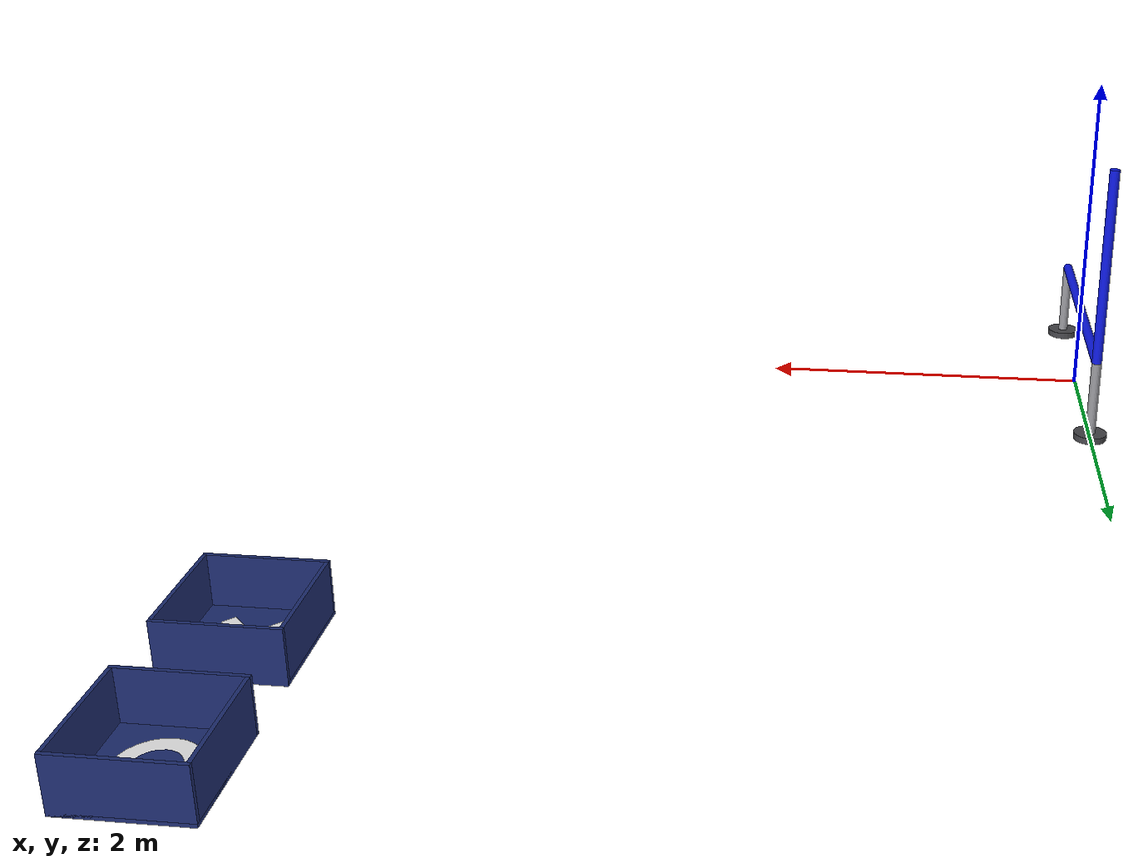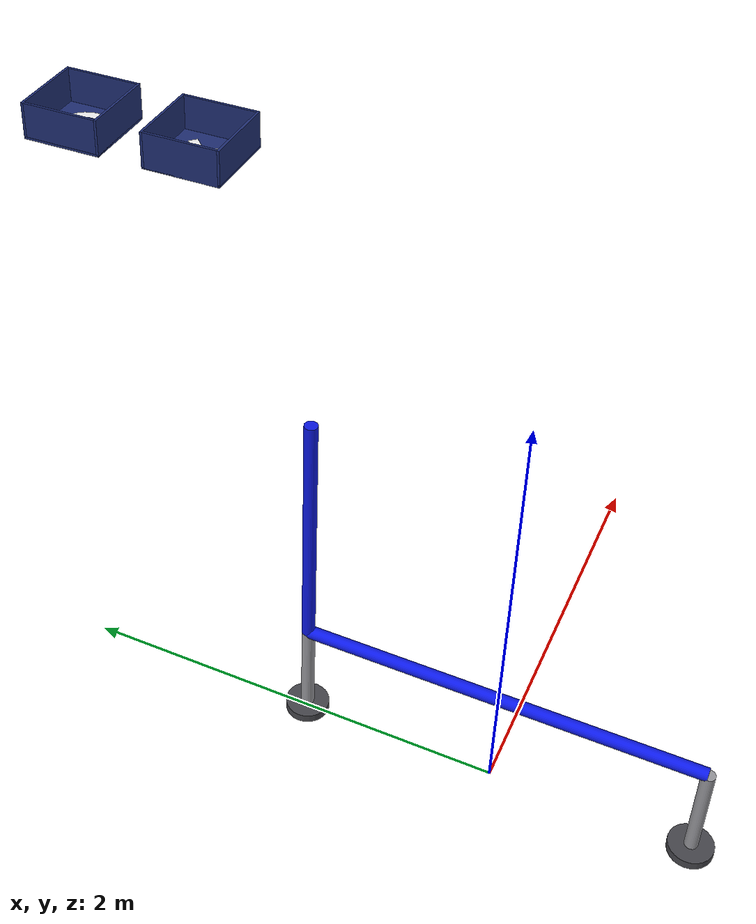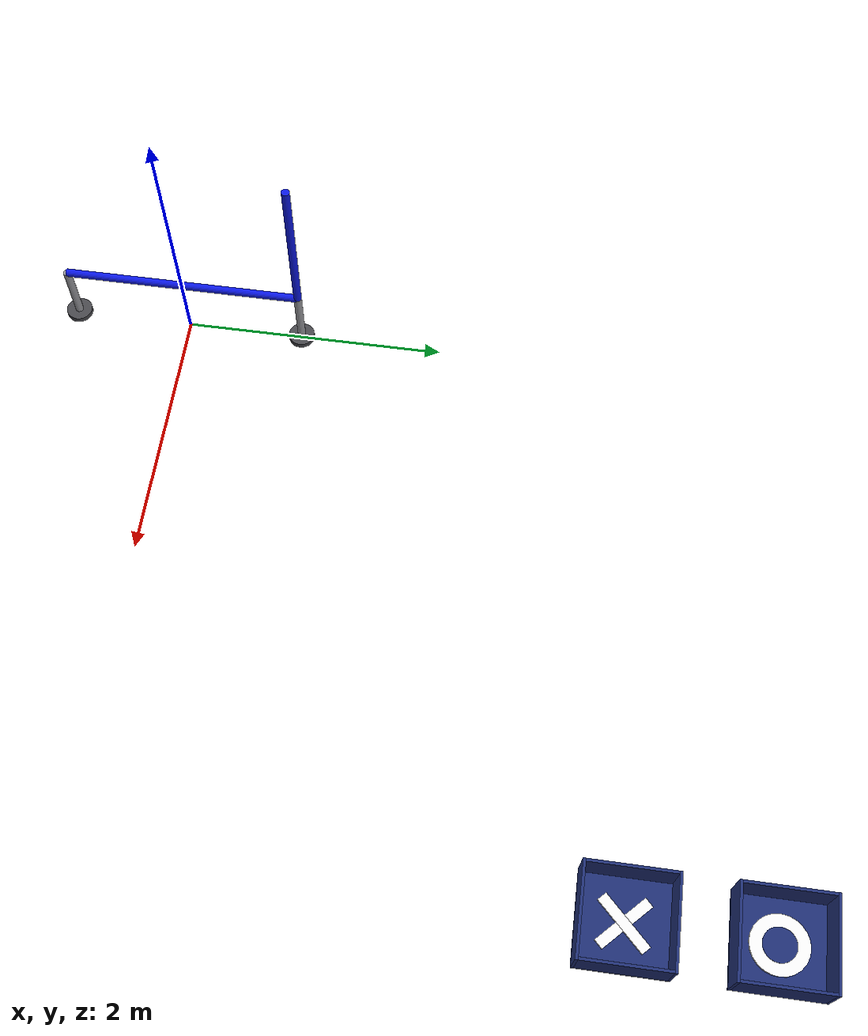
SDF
<sdf version="1.7">
 <world name="save_arena">
  <model name="love_lane">
   <static>true</static>
   <link name="ll_a_base">
    <pose>0.0000 -0.9000 0.0200 0 0 0.0000</pose>
    <collision name="ll_a_base_col">
     <geometry><cylinder><radius>0.1</radius><length>0.04</length></cylinder></geometry>
    </collision>
    <visual name="ll_a_base_vis">
     <geometry><cylinder><radius>0.1</radius><length>0.04</length></cylinder></geometry>
     <material>
      <ambient>0.28 0.28 0.3 1.0</ambient>
      <diffuse>0.28 0.28 0.3 1.0</diffuse>
      <specular>0.1 0.1 0.1 1</specular>
     </material>
    </visual>
   </link>
   <link name="ll_a_pipe">
    <pose>0.0000 -0.9000 0.2500 0 0 0.0000</pose>
    <collision name="ll_a_pipe_col">
     <geometry><cylinder><radius>0.03</radius><length>0.5</length></cylinder></geometry>
    </collision>
    <visual name="ll_a_pipe_vis">
     <geometry><cylinder><radius>0.03</radius><length>0.5</length></cylinder></geometry>
     <material>
      <ambient>0.6 0.6 0.62 1.0</ambient>
      <diffuse>0.6 0.6 0.62 1.0</diffuse>
      <specular>0.1 0.1 0.1 1</specular>
     </material>
    </visual>
   </link>
   <link name="ll_b_base">
    <pose>0.0000 0.9000 0.0200 0 0 0.0000</pose>
    <collision name="ll_b_base_col">
     <geometry><cylinder><radius>0.1</radius><length>0.04</length></cylinder></geometry>
    </collision>
    <visual name="ll_b_base_vis">
     <geometry><cylinder><radius>0.1</radius><length>0.04</length></cylinder></geometry>
     <material>
      <ambient>0.28 0.28 0.3 1.0</ambient>
      <diffuse>0.28 0.28 0.3 1.0</diffuse>
      <specular>0.1 0.1 0.1 1</specular>
     </material>
    </visual>
   </link>
   <link name="ll_b_pipe">
    <pose>0.0000 0.9000 0.2500 0 0 0.0000</pose>
    <collision name="ll_b_pipe_col">
     <geometry><cylinder><radius>0.03</radius><length>0.5</length></cylinder></geometry>
    </collision>
    <visual name="ll_b_pipe_vis">
     <geometry><cylinder><radius>0.03</radius><length>0.5</length></cylinder></geometry>
     <material>
      <ambient>0.6 0.6 0.62 1.0</ambient>
      <diffuse>0.6 0.6 0.62 1.0</diffuse>
      <specular>0.1 0.1 0.1 1</specular>
     </material>
    </visual>
   </link>
   <link name="ll_long">
    <pose>0.0000 0.0000 0.5000 1.5708 0 0</pose>
    <collision name="ll_long_col">
     <geometry><cylinder><radius>0.03</radius><length>1.8</length></cylinder></geometry>
    </collision>
    <visual name="ll_long_vis">
     <geometry><cylinder><radius>0.03</radius><length>1.8</length></cylinder></geometry>
     <material>
      <ambient>0.05 0.1 0.9 1.0</ambient>
      <diffuse>0.05 0.1 0.9 1.0</diffuse>
      <specular>0.1 0.1 0.1 1</specular>
     </material>
    </visual>
   </link>
   <link name="ll_short">
    <pose>0.0000 0.9000 1.1000 0 0 0.0000</pose>
    <collision name="ll_short_col">
     <geometry><cylinder><radius>0.03</radius><length>1.2</length></cylinder></geometry>
    </collision>
    <visual name="ll_short_vis">
     <geometry><cylinder><radius>0.03</radius><length>1.2</length></cylinder></geometry>
     <material>
      <ambient>0.05 0.1 0.9 1.0</ambient>
      <diffuse>0.05 0.1 0.9 1.0</diffuse>
      <specular>0.1 0.1 0.1 1</specular>
     </material>
    </visual>
   </link>
  </model>
  <model name="bins">
   <static>true</static>
   <link name="bin_O_base">
    <pose>4.2426 4.7426 0.0100 0 0 0.0000</pose>
    <collision name="bin_O_base_col"><geometry><box><size>0.64 0.64 0.02</size></box></geometry></collision>
    <visual name="bin_O_base_vis">
     <geometry><box><size>0.64 0.64 0.02</size></box></geometry>
     <material>
      <ambient>0.12 0.18 0.45 1.0</ambient>
      <diffuse>0.12 0.18 0.45 1.0</diffuse>
      <specular>0.1 0.1 0.1 1</specular>
     </material>
    </visual>
   </link>
   <link name="bin_O_wN">
    <pose>4.2426 5.0526 0.1500 0 0 0.0000</pose>
    <collision name="bin_O_wN_col"><geometry><box><size>0.64 0.02 0.3</size></box></geometry></collision>
    <visual name="bin_O_wN_vis">
     <geometry><box><size>0.64 0.02 0.3</size></box></geometry>
     <material>
      <ambient>0.12 0.18 0.45 1.0</ambient>
      <diffuse>0.12 0.18 0.45 1.0</diffuse>
      <specular>0.1 0.1 0.1 1</specular>
     </material>
    </visual>
   </link>
   <link name="bin_O_wS">
    <pose>4.2426 4.4326 0.1500 0 0 0.0000</pose>
    <collision name="bin_O_wS_col"><geometry><box><size>0.64 0.02 0.3</size></box></geometry></collision>
    <visual name="bin_O_wS_vis">
     <geometry><box><size>0.64 0.02 0.3</size></box></geometry>
     <material>
      <ambient>0.12 0.18 0.45 1.0</ambient>
      <diffuse>0.12 0.18 0.45 1.0</diffuse>
      <specular>0.1 0.1 0.1 1</specular>
     </material>
    </visual>
   </link>
   <link name="bin_O_wE">
    <pose>4.5526 4.7426 0.1500 0 0 0.0000</pose>
    <collision name="bin_O_wE_col"><geometry><box><size>0.02 0.6 0.3</size></box></geometry></collision>
    <visual name="bin_O_wE_vis">
     <geometry><box><size>0.02 0.6 0.3</size></box></geometry>
     <material>
      <ambient>0.12 0.18 0.45 1.0</ambient>
      <diffuse>0.12 0.18 0.45 1.0</diffuse>
      <specular>0.1 0.1 0.1 1</specular>
     </material>
    </visual>
   </link>
   <link name="bin_O_wW">
    <pose>3.9326 4.7426 0.1500 0 0 0.0000</pose>
    <collision name="bin_O_wW_col"><geometry><box><size>0.02 0.6 0.3</size></box></geometry></collision>
    <visual name="bin_O_wW_vis">
     <geometry><box><size>0.02 0.6 0.3</size></box></geometry>
     <material>
      <ambient>0.12 0.18 0.45 1.0</ambient>
      <diffuse>0.12 0.18 0.45 1.0</diffuse>
      <specular>0.1 0.1 0.1 1</specular>
     </material>
    </visual>
   </link>
   <link name="bin_O_mark">
    <pose>4.2426 4.7426 0.0270 0 0 0.0000</pose>
    <visual name="bin_O_mark_vis">
     <geometry><cylinder><radius>0.2</radius><length>0.014</length></cylinder></geometry>
     <material>
      <ambient>0.95 0.95 0.95 1.0</ambient>
      <diffuse>0.95 0.95 0.95 1.0</diffuse>
      <specular>0.1 0.1 0.1 1</specular>
     </material>
    </visual>
   </link>
   <link name="bin_O_hole">
    <pose>4.2426 4.7426 0.0330 0 0 0.0000</pose>
    <visual name="bin_O_hole_vis">
     <geometry><cylinder><radius>0.115</radius><length>0.006</length></cylinder></geometry>
     <material>
      <ambient>0.12 0.18 0.45 1.0</ambient>
      <diffuse>0.12 0.18 0.45 1.0</diffuse>
      <specular>0.1 0.1 0.1 1</specular>
     </material>
    </visual>
   </link>
   <link name="bin_X_base">
    <pose>4.2426 3.7426 0.0100 0 0 0.0000</pose>
    <collision name="bin_X_base_col"><geometry><box><size>0.64 0.64 0.02</size></box></geometry></collision>
    <visual name="bin_X_base_vis">
     <geometry><box><size>0.64 0.64 0.02</size></box></geometry>
     <material>
      <ambient>0.12 0.18 0.45 1.0</ambient>
      <diffuse>0.12 0.18 0.45 1.0</diffuse>
      <specular>0.1 0.1 0.1 1</specular>
     </material>
    </visual>
   </link>
   <link name="bin_X_wN">
    <pose>4.2426 4.0526 0.1500 0 0 0.0000</pose>
    <collision name="bin_X_wN_col"><geometry><box><size>0.64 0.02 0.3</size></box></geometry></collision>
    <visual name="bin_X_wN_vis">
     <geometry><box><size>0.64 0.02 0.3</size></box></geometry>
     <material>
      <ambient>0.12 0.18 0.45 1.0</ambient>
      <diffuse>0.12 0.18 0.45 1.0</diffuse>
      <specular>0.1 0.1 0.1 1</specular>
     </material>
    </visual>
   </link>
   <link name="bin_X_wS">
    <pose>4.2426 3.4326 0.1500 0 0 0.0000</pose>
    <collision name="bin_X_wS_col"><geometry><box><size>0.64 0.02 0.3</size></box></geometry></collision>
    <visual name="bin_X_wS_vis">
     <geometry><box><size>0.64 0.02 0.3</size></box></geometry>
     <material>
      <ambient>0.12 0.18 0.45 1.0</ambient>
      <diffuse>0.12 0.18 0.45 1.0</diffuse>
      <specular>0.1 0.1 0.1 1</specular>
     </material>
    </visual>
   </link>
   <link name="bin_X_wE">
    <pose>4.5526 3.7426 0.1500 0 0 0.0000</pose>
    <collision name="bin_X_wE_col"><geometry><box><size>0.02 0.6 0.3</size></box></geometry></collision>
    <visual name="bin_X_wE_vis">
     <geometry><box><size>0.02 0.6 0.3</size></box></geometry>
     <material>
      <ambient>0.12 0.18 0.45 1.0</ambient>
      <diffuse>0.12 0.18 0.45 1.0</diffuse>
      <specular>0.1 0.1 0.1 1</specular>
     </material>
    </visual>
   </link>
   <link name="bin_X_wW">
    <pose>3.9326 3.7426 0.1500 0 0 0.0000</pose>
    <collision name="bin_X_wW_col"><geometry><box><size>0.02 0.6 0.3</size></box></geometry></collision>
    <visual name="bin_X_wW_vis">
     <geometry><box><size>0.02 0.6 0.3</size></box></geometry>
     <material>
      <ambient>0.12 0.18 0.45 1.0</ambient>
      <diffuse>0.12 0.18 0.45 1.0</diffuse>
      <specular>0.1 0.1 0.1 1</specular>
     </material>
    </visual>
   </link>
   <link name="bin_X_barA">
    <pose>4.2426 3.7426 0.0270 0 0 0.7854</pose>
    <visual name="bin_X_barA_vis">
     <geometry><box><size>0.44 0.075 0.014</size></box></geometry>
     <material>
      <ambient>0.95 0.95 0.95 1.0</ambient>
      <diffuse>0.95 0.95 0.95 1.0</diffuse>
      <specular>0.1 0.1 0.1 1</specular>
     </material>
    </visual>
   </link>
   <link name="bin_X_barB">
    <pose>4.2426 3.7426 0.0270 0 0 -0.7854</pose>
    <visual name="bin_X_barB_vis">
     <geometry><box><size>0.44 0.075 0.014</size></box></geometry>
     <material>
      <ambient>0.95 0.95 0.95 1.0</ambient>
      <diffuse>0.95 0.95 0.95 1.0</diffuse>
      <specular>0.1 0.1 0.1 1</specular>
     </material>
    </visual>
   </link>
  </model>
 </world>
</sdf>
